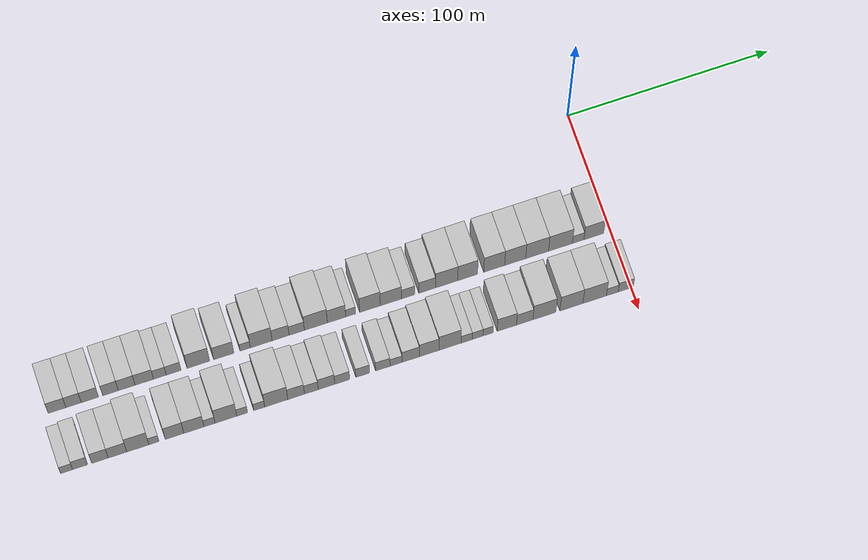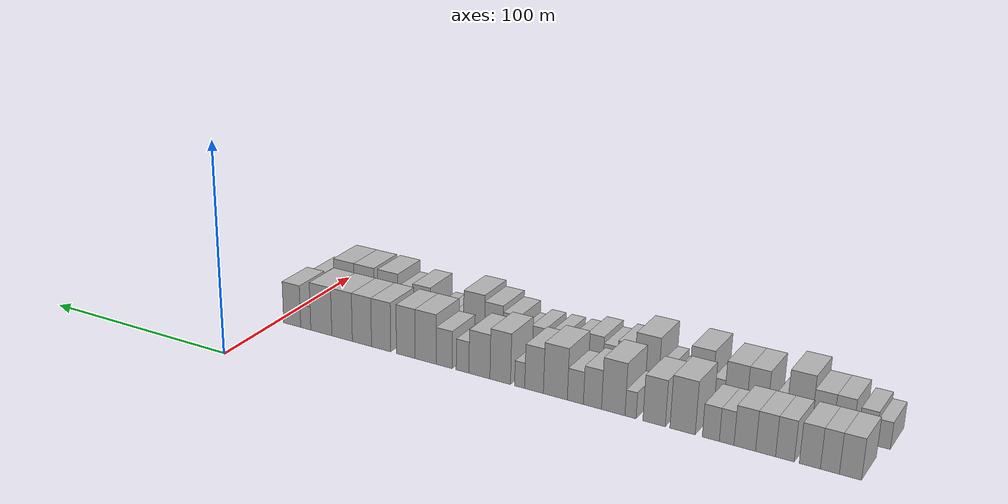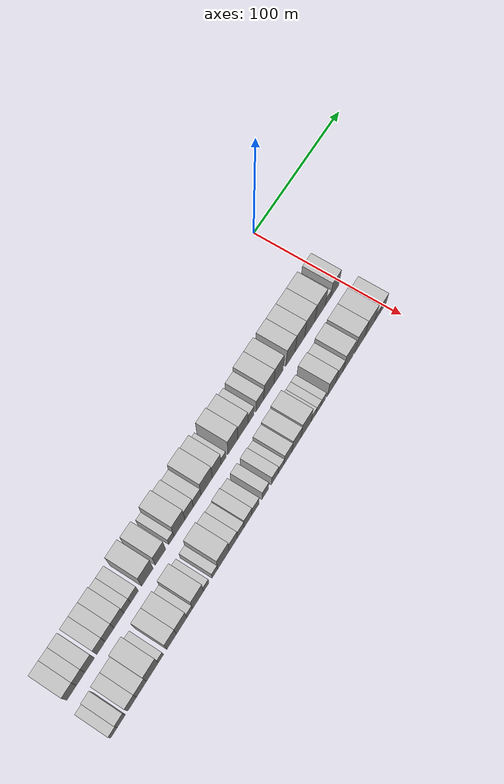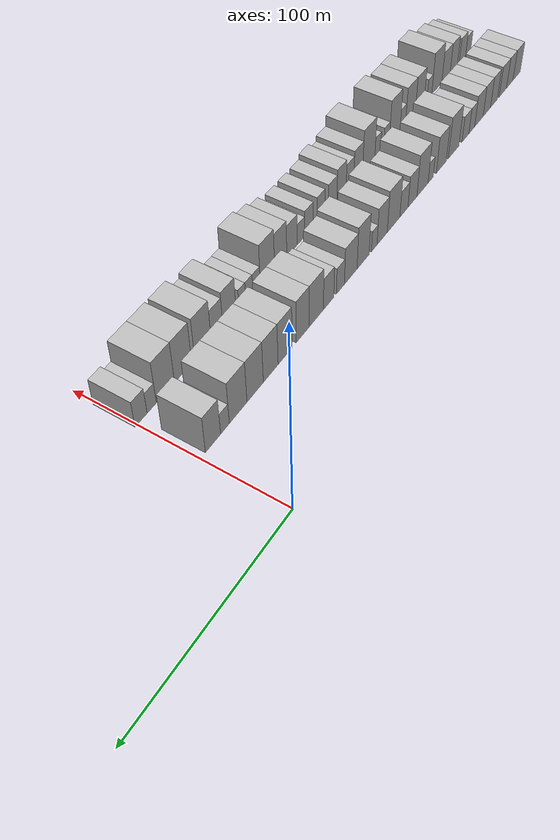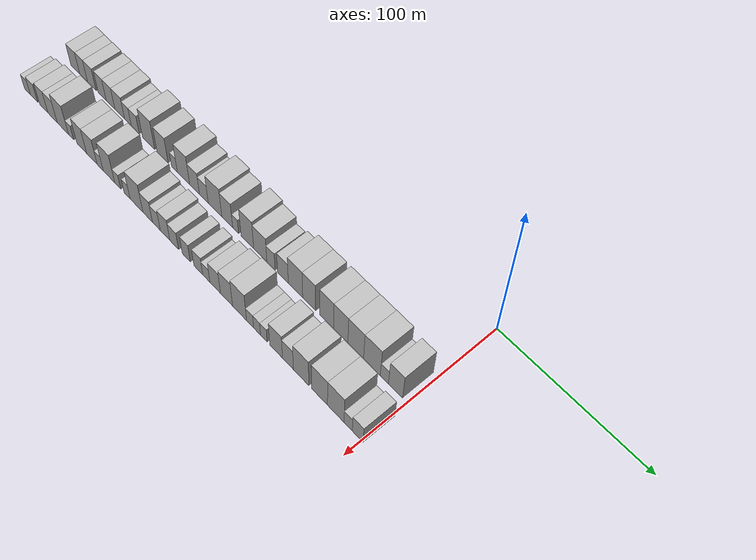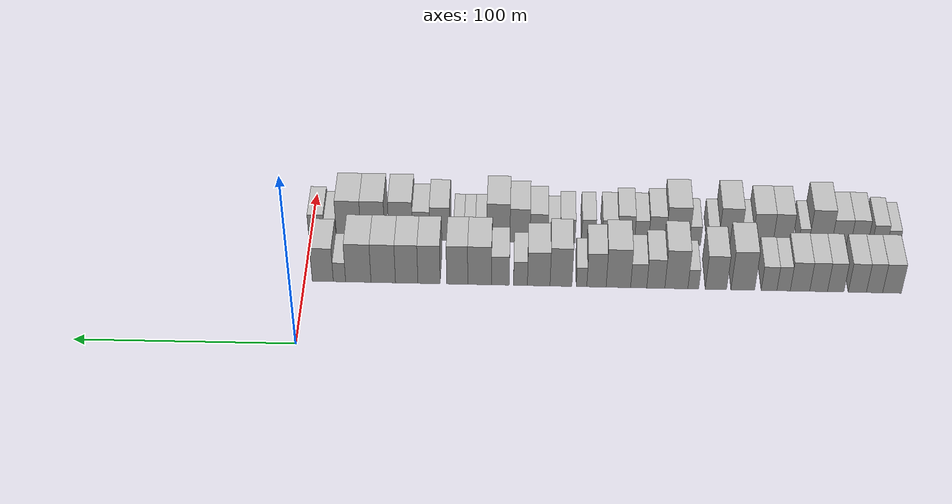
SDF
<sdf version="1.6">
 <world name="default">
  <model name="building_1">
   <static>1</static>
   <pose>50.0000 -270.7168 0 0.000000 0.000000 0.000000</pose>
   <link name="link">
    <pose>0 0 9.00 0 0 0</pose>
    <collision name="collision"><geometry><box><size>20.0000 8.5664 18.0000</size></box></geometry></collision>
    <visual name="visual">
     <cast_shadows>0</cast_shadows>
     <geometry><box><size>20.0000 8.5664 18.0000</size></box></geometry>
     <material>
      <script>
       <uri>model://HANNAS_wall/materials/scripts</uri>
       <uri>model://HANNAS_wall/materials/textures</uri>
       <name>vrc/HANNAS_wall</name>
      </script>
     </material>
    </visual>
   </link>
  </model>
  <model name="building_2">
   <static>1</static>
   <pose>50.0000 -262.7219 0 0.000000 0.000000 0.000000</pose>
   <link name="link">
    <pose>0 0 9.00 0 0 0</pose>
    <collision name="collision"><geometry><box><size>20.0000 7.4233 18.0000</size></box></geometry></collision>
    <visual name="visual">
     <cast_shadows>0</cast_shadows>
     <geometry><box><size>20.0000 7.4233 18.0000</size></box></geometry>
     <material>
      <script>
       <uri>model://HANNAS_wall/materials/scripts</uri>
       <uri>model://HANNAS_wall/materials/textures</uri>
       <name>vrc/HANNAS_wall</name>
      </script>
     </material>
    </visual>
   </link>
  </model>
  <model name="building_3">
   <static>1</static>
   <pose>50.0000 -254.8419 0 0.000000 0.000000 0.000000</pose>
   <link name="link">
    <pose>0 0 9.00 0 0 0</pose>
    <collision name="collision"><geometry><box><size>20.0000 8.3367 18.0000</size></box></geometry></collision>
    <visual name="visual">
     <cast_shadows>0</cast_shadows>
     <geometry><box><size>20.0000 8.3367 18.0000</size></box></geometry>
     <material>
      <script>
       <uri>model://HANNAS_wall/materials/scripts</uri>
       <uri>model://HANNAS_wall/materials/textures</uri>
       <name>vrc/HANNAS_wall</name>
      </script>
     </material>
    </visual>
   </link>
  </model>
  <model name="building_4">
   <static>1</static>
   <pose>50.0000 -244.9049 0 0.000000 0.000000 0.000000</pose>
   <link name="link">
    <pose>0 0 9.00 0 0 0</pose>
    <collision name="collision"><geometry><box><size>20.0000 7.5373 18.0000</size></box></geometry></collision>
    <visual name="visual">
     <cast_shadows>0</cast_shadows>
     <geometry><box><size>20.0000 7.5373 18.0000</size></box></geometry>
     <material>
      <script>
       <uri>model://HANNAS_wall/materials/scripts</uri>
       <uri>model://HANNAS_wall/materials/textures</uri>
       <name>vrc/HANNAS_wall</name>
      </script>
     </material>
    </visual>
   </link>
  </model>
  <model name="building_5">
   <static>1</static>
   <pose>50.0000 -237.0605 0 0.000000 0.000000 0.000000</pose>
   <link name="link">
    <pose>0 0 9.00 0 0 0</pose>
    <collision name="collision"><geometry><box><size>20.0000 8.1513 18.0000</size></box></geometry></collision>
    <visual name="visual">
     <cast_shadows>0</cast_shadows>
     <geometry><box><size>20.0000 8.1513 18.0000</size></box></geometry>
     <material>
      <script>
       <uri>model://HANNAS_wall/materials/scripts</uri>
       <uri>model://HANNAS_wall/materials/textures</uri>
       <name>vrc/HANNAS_wall</name>
      </script>
     </material>
    </visual>
   </link>
  </model>
  <model name="building_6">
   <static>1</static>
   <pose>50.0000 -228.5198 0 0.000000 0.000000 0.000000</pose>
   <link name="link">
    <pose>0 0 9.00 0 0 0</pose>
    <collision name="collision"><geometry><box><size>20.0000 8.9301 18.0000</size></box></geometry></collision>
    <visual name="visual">
     <cast_shadows>0</cast_shadows>
     <geometry><box><size>20.0000 8.9301 18.0000</size></box></geometry>
     <material>
      <script>
       <uri>model://HANNAS_wall/materials/scripts</uri>
       <uri>model://HANNAS_wall/materials/textures</uri>
       <name>vrc/HANNAS_wall</name>
      </script>
     </material>
    </visual>
   </link>
  </model>
  <model name="building_7">
   <static>1</static>
   <pose>50.0000 -220.9918 0 0.000000 0.000000 0.000000</pose>
   <link name="link">
    <pose>0 0 7.50 0 0 0</pose>
    <collision name="collision"><geometry><box><size>20.0000 6.1259 15.0000</size></box></geometry></collision>
    <visual name="visual">
     <cast_shadows>0</cast_shadows>
     <geometry><box><size>20.0000 6.1259 15.0000</size></box></geometry>
     <material>
      <script>
       <uri>model://HANNAS_wall/materials/scripts</uri>
       <uri>model://HANNAS_wall/materials/textures</uri>
       <name>vrc/HANNAS_wall</name>
      </script>
     </material>
    </visual>
   </link>
  </model>
  <model name="building_8">
   <static>1</static>
   <pose>50.0000 -214.3216 0 0.000000 0.000000 0.000000</pose>
   <link name="link">
    <pose>0 0 7.50 0 0 0</pose>
    <collision name="collision"><geometry><box><size>20.0000 7.2145 15.0000</size></box></geometry></collision>
    <visual name="visual">
     <cast_shadows>0</cast_shadows>
     <geometry><box><size>20.0000 7.2145 15.0000</size></box></geometry>
     <material>
      <script>
       <uri>model://HANNAS_wall/materials/scripts</uri>
       <uri>model://HANNAS_wall/materials/textures</uri>
       <name>vrc/HANNAS_wall</name>
      </script>
     </material>
    </visual>
   </link>
  </model>
  <model name="building_9">
   <static>1</static>
   <pose>50.0000 -202.2630 0 0.000000 0.000000 0.000000</pose>
   <link name="link">
    <pose>0 0 12.00 0 0 0</pose>
    <collision name="collision"><geometry><box><size>20.0000 10.9027 24.0000</size></box></geometry></collision>
    <visual name="visual">
     <cast_shadows>0</cast_shadows>
     <geometry><box><size>20.0000 10.9027 24.0000</size></box></geometry>
     <material>
      <script>
       <uri>model://HANNAS_wall/materials/scripts</uri>
       <uri>model://HANNAS_wall/materials/textures</uri>
       <name>vrc/HANNAS_wall</name>
      </script>
     </material>
    </visual>
   </link>
  </model>
  <model name="building_10">
   <static>1</static>
   <pose>50.0000 -189.8915 0 0.000000 0.000000 0.000000</pose>
   <link name="link">
    <pose>0 0 10.50 0 0 0</pose>
    <collision name="collision"><geometry><box><size>20.0000 9.8403 21.0000</size></box></geometry></collision>
    <visual name="visual">
     <cast_shadows>0</cast_shadows>
     <geometry><box><size>20.0000 9.8403 21.0000</size></box></geometry>
     <material>
      <script>
       <uri>model://HANNAS_wall/materials/scripts</uri>
       <uri>model://HANNAS_wall/materials/textures</uri>
       <name>vrc/HANNAS_wall</name>
      </script>
     </material>
    </visual>
   </link>
  </model>
  <model name="building_11">
   <static>1</static>
   <pose>50.0000 -179.4758 0 0.000000 0.000000 0.000000</pose>
   <link name="link">
    <pose>0 0 6.00 0 0 0</pose>
    <collision name="collision"><geometry><box><size>20.0000 4.9911 12.0000</size></box></geometry></collision>
    <visual name="visual">
     <cast_shadows>0</cast_shadows>
     <geometry><box><size>20.0000 4.9911 12.0000</size></box></geometry>
     <material>
      <script>
       <uri>model://HANNAS_wall/materials/scripts</uri>
       <uri>model://HANNAS_wall/materials/textures</uri>
       <name>vrc/HANNAS_wall</name>
      </script>
     </material>
    </visual>
   </link>
  </model>
  <model name="building_12">
   <static>1</static>
   <pose>50.0000 -171.6714 0 0.000000 0.000000 0.000000</pose>
   <link name="link">
    <pose>0 0 12.00 0 0 0</pose>
    <collision name="collision"><geometry><box><size>20.0000 10.6177 24.0000</size></box></geometry></collision>
    <visual name="visual">
     <cast_shadows>0</cast_shadows>
     <geometry><box><size>20.0000 10.6177 24.0000</size></box></geometry>
     <material>
      <script>
       <uri>model://HANNAS_wall/materials/scripts</uri>
       <uri>model://HANNAS_wall/materials/textures</uri>
       <name>vrc/HANNAS_wall</name>
      </script>
     </material>
    </visual>
   </link>
  </model>
  <model name="building_13">
   <static>1</static>
   <pose>50.0000 -162.2063 0 0.000000 0.000000 0.000000</pose>
   <link name="link">
    <pose>0 0 9.00 0 0 0</pose>
    <collision name="collision"><geometry><box><size>20.0000 8.3125 18.0000</size></box></geometry></collision>
    <visual name="visual">
     <cast_shadows>0</cast_shadows>
     <geometry><box><size>20.0000 8.3125 18.0000</size></box></geometry>
     <material>
      <script>
       <uri>model://HANNAS_wall/materials/scripts</uri>
       <uri>model://HANNAS_wall/materials/textures</uri>
       <name>vrc/HANNAS_wall</name>
      </script>
     </material>
    </visual>
   </link>
  </model>
  <model name="building_14">
   <static>1</static>
   <pose>50.0000 -154.3164 0 0.000000 0.000000 0.000000</pose>
   <link name="link">
    <pose>0 0 7.50 0 0 0</pose>
    <collision name="collision"><geometry><box><size>20.0000 7.4673 15.0000</size></box></geometry></collision>
    <visual name="visual">
     <cast_shadows>0</cast_shadows>
     <geometry><box><size>20.0000 7.4673 15.0000</size></box></geometry>
     <material>
      <script>
       <uri>model://HANNAS_wall/materials/scripts</uri>
       <uri>model://HANNAS_wall/materials/textures</uri>
       <name>vrc/HANNAS_wall</name>
      </script>
     </material>
    </visual>
   </link>
  </model>
  <model name="building_15">
   <static>1</static>
   <pose>50.0000 -144.9487 0 0.000000 0.000000 0.000000</pose>
   <link name="link">
    <pose>0 0 12.00 0 0 0</pose>
    <collision name="collision"><geometry><box><size>20.0000 11.2681 24.0000</size></box></geometry></collision>
    <visual name="visual">
     <cast_shadows>0</cast_shadows>
     <geometry><box><size>20.0000 11.2681 24.0000</size></box></geometry>
     <material>
      <script>
       <uri>model://HANNAS_wall/materials/scripts</uri>
       <uri>model://HANNAS_wall/materials/textures</uri>
       <name>vrc/HANNAS_wall</name>
      </script>
     </material>
    </visual>
   </link>
  </model>
  <model name="building_16">
   <static>1</static>
   <pose>50.0000 -134.8503 0 0.000000 0.000000 0.000000</pose>
   <link name="link">
    <pose>0 0 10.50 0 0 0</pose>
    <collision name="collision"><geometry><box><size>20.0000 8.9286 21.0000</size></box></geometry></collision>
    <visual name="visual">
     <cast_shadows>0</cast_shadows>
     <geometry><box><size>20.0000 8.9286 21.0000</size></box></geometry>
     <material>
      <script>
       <uri>model://HANNAS_wall/materials/scripts</uri>
       <uri>model://HANNAS_wall/materials/textures</uri>
       <name>vrc/HANNAS_wall</name>
      </script>
     </material>
    </visual>
   </link>
  </model>
  <model name="building_17">
   <static>1</static>
   <pose>50.0000 -127.9544 0 0.000000 0.000000 0.000000</pose>
   <link name="link">
    <pose>0 0 6.00 0 0 0</pose>
    <collision name="collision"><geometry><box><size>20.0000 4.8633 12.0000</size></box></geometry></collision>
    <visual name="visual">
     <cast_shadows>0</cast_shadows>
     <geometry><box><size>20.0000 4.8633 12.0000</size></box></geometry>
     <material>
      <script>
       <uri>model://HANNAS_wall/materials/scripts</uri>
       <uri>model://HANNAS_wall/materials/textures</uri>
       <name>vrc/HANNAS_wall</name>
      </script>
     </material>
    </visual>
   </link>
  </model>
  <model name="building_18">
   <static>1</static>
   <pose>50.0000 -118.4666 0 0.000000 0.000000 0.000000</pose>
   <link name="link">
    <pose>0 0 12.00 0 0 0</pose>
    <collision name="collision"><geometry><box><size>20.0000 10.1121 24.0000</size></box></geometry></collision>
    <visual name="visual">
     <cast_shadows>0</cast_shadows>
     <geometry><box><size>20.0000 10.1121 24.0000</size></box></geometry>
     <material>
      <script>
       <uri>model://HANNAS_wall/materials/scripts</uri>
       <uri>model://HANNAS_wall/materials/textures</uri>
       <name>vrc/HANNAS_wall</name>
      </script>
     </material>
    </visual>
   </link>
  </model>
  <model name="building_19">
   <static>1</static>
   <pose>50.0000 -108.1889 0 0.000000 0.000000 0.000000</pose>
   <link name="link">
    <pose>0 0 10.50 0 0 0</pose>
    <collision name="collision"><geometry><box><size>20.0000 10.4434 21.0000</size></box></geometry></collision>
    <visual name="visual">
     <cast_shadows>0</cast_shadows>
     <geometry><box><size>20.0000 10.4434 21.0000</size></box></geometry>
     <material>
      <script>
       <uri>model://HANNAS_wall/materials/scripts</uri>
       <uri>model://HANNAS_wall/materials/textures</uri>
       <name>vrc/HANNAS_wall</name>
      </script>
     </material>
    </visual>
   </link>
  </model>
  <model name="building_20">
   <static>1</static>
   <pose>50.0000 -99.7543 0 0.000000 0.000000 0.000000</pose>
   <link name="link">
    <pose>0 0 7.50 0 0 0</pose>
    <collision name="collision"><geometry><box><size>20.0000 6.4258 15.0000</size></box></geometry></collision>
    <visual name="visual">
     <cast_shadows>0</cast_shadows>
     <geometry><box><size>20.0000 6.4258 15.0000</size></box></geometry>
     <material>
      <script>
       <uri>model://HANNAS_wall/materials/scripts</uri>
       <uri>model://HANNAS_wall/materials/textures</uri>
       <name>vrc/HANNAS_wall</name>
      </script>
     </material>
    </visual>
   </link>
  </model>
  <model name="building_21">
   <static>1</static>
   <pose>50.0000 -90.4187 0 0.000000 0.000000 0.000000</pose>
   <link name="link">
    <pose>0 0 9.00 0 0 0</pose>
    <collision name="collision"><geometry><box><size>20.0000 8.2455 18.0000</size></box></geometry></collision>
    <visual name="visual">
     <cast_shadows>0</cast_shadows>
     <geometry><box><size>20.0000 8.2455 18.0000</size></box></geometry>
     <material>
      <script>
       <uri>model://HANNAS_wall/materials/scripts</uri>
       <uri>model://HANNAS_wall/materials/textures</uri>
       <name>vrc/HANNAS_wall</name>
      </script>
     </material>
    </visual>
   </link>
  </model>
  <model name="building_22">
   <static>1</static>
   <pose>50.0000 -80.8268 0 0.000000 0.000000 0.000000</pose>
   <link name="link">
    <pose>0 0 12.00 0 0 0</pose>
    <collision name="collision"><geometry><box><size>20.0000 10.9381 24.0000</size></box></geometry></collision>
    <visual name="visual">
     <cast_shadows>0</cast_shadows>
     <geometry><box><size>20.0000 10.9381 24.0000</size></box></geometry>
     <material>
      <script>
       <uri>model://HANNAS_wall/materials/scripts</uri>
       <uri>model://HANNAS_wall/materials/textures</uri>
       <name>vrc/HANNAS_wall</name>
      </script>
     </material>
    </visual>
   </link>
  </model>
  <model name="building_23">
   <static>1</static>
   <pose>50.0000 -70.4819 0 0.000000 0.000000 0.000000</pose>
   <link name="link">
    <pose>0 0 12.00 0 0 0</pose>
    <collision name="collision"><geometry><box><size>20.0000 9.7517 24.0000</size></box></geometry></collision>
    <visual name="visual">
     <cast_shadows>0</cast_shadows>
     <geometry><box><size>20.0000 9.7517 24.0000</size></box></geometry>
     <material>
      <script>
       <uri>model://HANNAS_wall/materials/scripts</uri>
       <uri>model://HANNAS_wall/materials/textures</uri>
       <name>vrc/HANNAS_wall</name>
      </script>
     </material>
    </visual>
   </link>
  </model>
  <model name="building_24">
   <static>1</static>
   <pose>50.0000 -57.4572 0 0.000000 0.000000 0.000000</pose>
   <link name="link">
    <pose>0 0 12.00 0 0 0</pose>
    <collision name="collision"><geometry><box><size>20.0000 10.2979 24.0000</size></box></geometry></collision>
    <visual name="visual">
     <cast_shadows>0</cast_shadows>
     <geometry><box><size>20.0000 10.2979 24.0000</size></box></geometry>
     <material>
      <script>
       <uri>model://HANNAS_wall/materials/scripts</uri>
       <uri>model://HANNAS_wall/materials/textures</uri>
       <name>vrc/HANNAS_wall</name>
      </script>
     </material>
    </visual>
   </link>
  </model>
  <model name="building_25">
   <static>1</static>
   <pose>50.0000 -47.1067 0 0.000000 0.000000 0.000000</pose>
   <link name="link">
    <pose>0 0 12.00 0 0 0</pose>
    <collision name="collision"><geometry><box><size>20.0000 10.4030 24.0000</size></box></geometry></collision>
    <visual name="visual">
     <cast_shadows>0</cast_shadows>
     <geometry><box><size>20.0000 10.4030 24.0000</size></box></geometry>
     <material>
      <script>
       <uri>model://HANNAS_wall/materials/scripts</uri>
       <uri>model://HANNAS_wall/materials/textures</uri>
       <name>vrc/HANNAS_wall</name>
      </script>
     </material>
    </visual>
   </link>
  </model>
  <model name="building_26">
   <static>1</static>
   <pose>50.0000 -36.2459 0 0.000000 0.000000 0.000000</pose>
   <link name="link">
    <pose>0 0 12.00 0 0 0</pose>
    <collision name="collision"><geometry><box><size>20.0000 11.3186 24.0000</size></box></geometry></collision>
    <visual name="visual">
     <cast_shadows>0</cast_shadows>
     <geometry><box><size>20.0000 11.3186 24.0000</size></box></geometry>
     <material>
      <script>
       <uri>model://HANNAS_wall/materials/scripts</uri>
       <uri>model://HANNAS_wall/materials/textures</uri>
       <name>vrc/HANNAS_wall</name>
      </script>
     </material>
    </visual>
   </link>
  </model>
  <model name="building_27">
   <static>1</static>
   <pose>50.0000 -24.6920 0 0.000000 0.000000 0.000000</pose>
   <link name="link">
    <pose>0 0 12.00 0 0 0</pose>
    <collision name="collision"><geometry><box><size>20.0000 11.7893 24.0000</size></box></geometry></collision>
    <visual name="visual">
     <cast_shadows>0</cast_shadows>
     <geometry><box><size>20.0000 11.7893 24.0000</size></box></geometry>
     <material>
      <script>
       <uri>model://HANNAS_wall/materials/scripts</uri>
       <uri>model://HANNAS_wall/materials/textures</uri>
       <name>vrc/HANNAS_wall</name>
      </script>
     </material>
    </visual>
   </link>
  </model>
  <model name="building_28">
   <static>1</static>
   <pose>50.0000 -15.9460 0 0.000000 0.000000 0.000000</pose>
   <link name="link">
    <pose>0 0 6.00 0 0 0</pose>
    <collision name="collision"><geometry><box><size>20.0000 5.7028 12.0000</size></box></geometry></collision>
    <visual name="visual">
     <cast_shadows>0</cast_shadows>
     <geometry><box><size>20.0000 5.7028 12.0000</size></box></geometry>
     <material>
      <script>
       <uri>model://HANNAS_wall/materials/scripts</uri>
       <uri>model://HANNAS_wall/materials/textures</uri>
       <name>vrc/HANNAS_wall</name>
      </script>
     </material>
    </visual>
   </link>
  </model>
  <model name="building_29">
   <static>1</static>
   <pose>50.0000 -8.2112 0 0.000000 0.000000 0.000000</pose>
   <link name="link">
    <pose>0 0 10.50 0 0 0</pose>
    <collision name="collision"><geometry><box><size>20.0000 9.7667 21.0000</size></box></geometry></collision>
    <visual name="visual">
     <cast_shadows>0</cast_shadows>
     <geometry><box><size>20.0000 9.7667 21.0000</size></box></geometry>
     <material>
      <script>
       <uri>model://HANNAS_wall/materials/scripts</uri>
       <uri>model://HANNAS_wall/materials/textures</uri>
       <name>vrc/HANNAS_wall</name>
      </script>
     </material>
    </visual>
   </link>
  </model>
  <model name="building_61">
   <static>1</static>
   <pose>79.0000 -275.0721 0 0.000000 0.000000 0.000000</pose>
   <link name="link">
    <pose>0 0 6.00 0 0 0</pose>
    <collision name="collision"><geometry><box><size>20.0000 5.8558 12.0000</size></box></geometry></collision>
    <visual name="visual">
     <cast_shadows>0</cast_shadows>
     <geometry><box><size>20.0000 5.8558 12.0000</size></box></geometry>
     <material>
      <script>
       <uri>model://HANNAS_wall/materials/scripts</uri>
       <uri>model://HANNAS_wall/materials/textures</uri>
       <name>vrc/HANNAS_wall</name>
      </script>
     </material>
    </visual>
   </link>
  </model>
  <model name="building_62">
   <static>1</static>
   <pose>79.0000 -268.5609 0 0.000000 0.000000 0.000000</pose>
   <link name="link">
    <pose>0 0 7.50 0 0 0</pose>
    <collision name="collision"><geometry><box><size>20.0000 7.1666 15.0000</size></box></geometry></collision>
    <visual name="visual">
     <cast_shadows>0</cast_shadows>
     <geometry><box><size>20.0000 7.1666 15.0000</size></box></geometry>
     <material>
      <script>
       <uri>model://HANNAS_wall/materials/scripts</uri>
       <uri>model://HANNAS_wall/materials/textures</uri>
       <name>vrc/HANNAS_wall</name>
      </script>
     </material>
    </visual>
   </link>
  </model>
  <model name="building_63">
   <static>1</static>
   <pose>79.0000 -258.9908 0 0.000000 0.000000 0.000000</pose>
   <link name="link">
    <pose>0 0 9.00 0 0 0</pose>
    <collision name="collision"><geometry><box><size>20.0000 7.9735 18.0000</size></box></geometry></collision>
    <visual name="visual">
     <cast_shadows>0</cast_shadows>
     <geometry><box><size>20.0000 7.9735 18.0000</size></box></geometry>
     <material>
      <script>
       <uri>model://HANNAS_wall/materials/scripts</uri>
       <uri>model://HANNAS_wall/materials/textures</uri>
       <name>vrc/HANNAS_wall</name>
      </script>
     </material>
    </visual>
   </link>
  </model>
  <model name="building_64">
   <static>1</static>
   <pose>79.0000 -250.5445 0 0.000000 0.000000 0.000000</pose>
   <link name="link">
    <pose>0 0 9.00 0 0 0</pose>
    <collision name="collision"><geometry><box><size>20.0000 8.9191 18.0000</size></box></geometry></collision>
    <visual name="visual">
     <cast_shadows>0</cast_shadows>
     <geometry><box><size>20.0000 8.9191 18.0000</size></box></geometry>
     <material>
      <script>
       <uri>model://HANNAS_wall/materials/scripts</uri>
       <uri>model://HANNAS_wall/materials/textures</uri>
       <name>vrc/HANNAS_wall</name>
      </script>
     </material>
    </visual>
   </link>
  </model>
  <model name="building_65">
   <static>1</static>
   <pose>79.0000 -240.7412 0 0.000000 0.000000 0.000000</pose>
   <link name="link">
    <pose>0 0 12.00 0 0 0</pose>
    <collision name="collision"><geometry><box><size>20.0000 10.6875 24.0000</size></box></geometry></collision>
    <visual name="visual">
     <cast_shadows>0</cast_shadows>
     <geometry><box><size>20.0000 10.6875 24.0000</size></box></geometry>
     <material>
      <script>
       <uri>model://HANNAS_wall/materials/scripts</uri>
       <uri>model://HANNAS_wall/materials/textures</uri>
       <name>vrc/HANNAS_wall</name>
      </script>
     </material>
    </visual>
   </link>
  </model>
  <model name="building_66">
   <static>1</static>
   <pose>79.0000 -232.9635 0 0.000000 0.000000 0.000000</pose>
   <link name="link">
    <pose>0 0 6.00 0 0 0</pose>
    <collision name="collision"><geometry><box><size>20.0000 4.8679 12.0000</size></box></geometry></collision>
    <visual name="visual">
     <cast_shadows>0</cast_shadows>
     <geometry><box><size>20.0000 4.8679 12.0000</size></box></geometry>
     <material>
      <script>
       <uri>model://HANNAS_wall/materials/scripts</uri>
       <uri>model://HANNAS_wall/materials/textures</uri>
       <name>vrc/HANNAS_wall</name>
      </script>
     </material>
    </visual>
   </link>
  </model>
  <model name="building_67">
   <static>1</static>
   <pose>79.0000 -223.0321 0 0.000000 0.000000 0.000000</pose>
   <link name="link">
    <pose>0 0 10.50 0 0 0</pose>
    <collision name="collision"><geometry><box><size>20.0000 8.9949 21.0000</size></box></geometry></collision>
    <visual name="visual">
     <cast_shadows>0</cast_shadows>
     <geometry><box><size>20.0000 8.9949 21.0000</size></box></geometry>
     <material>
      <script>
       <uri>model://HANNAS_wall/materials/scripts</uri>
       <uri>model://HANNAS_wall/materials/textures</uri>
       <name>vrc/HANNAS_wall</name>
      </script>
     </material>
    </visual>
   </link>
  </model>
  <model name="building_68">
   <static>1</static>
   <pose>79.0000 -213.6621 0 0.000000 0.000000 0.000000</pose>
   <link name="link">
    <pose>0 0 10.50 0 0 0</pose>
    <collision name="collision"><geometry><box><size>20.0000 9.7450 21.0000</size></box></geometry></collision>
    <visual name="visual">
     <cast_shadows>0</cast_shadows>
     <geometry><box><size>20.0000 9.7450 21.0000</size></box></geometry>
     <material>
      <script>
       <uri>model://HANNAS_wall/materials/scripts</uri>
       <uri>model://HANNAS_wall/materials/textures</uri>
       <name>vrc/HANNAS_wall</name>
      </script>
     </material>
    </visual>
   </link>
  </model>
  <model name="building_69">
   <static>1</static>
   <pose>79.0000 -206.0963 0 0.000000 0.000000 0.000000</pose>
   <link name="link">
    <pose>0 0 6.00 0 0 0</pose>
    <collision name="collision"><geometry><box><size>20.0000 5.3866 12.0000</size></box></geometry></collision>
    <visual name="visual">
     <cast_shadows>0</cast_shadows>
     <geometry><box><size>20.0000 5.3866 12.0000</size></box></geometry>
     <material>
      <script>
       <uri>model://HANNAS_wall/materials/scripts</uri>
       <uri>model://HANNAS_wall/materials/textures</uri>
       <name>vrc/HANNAS_wall</name>
      </script>
     </material>
    </visual>
   </link>
  </model>
  <model name="building_70">
   <static>1</static>
   <pose>79.0000 -198.1721 0 0.000000 0.000000 0.000000</pose>
   <link name="link">
    <pose>0 0 12.00 0 0 0</pose>
    <collision name="collision"><geometry><box><size>20.0000 10.4617 24.0000</size></box></geometry></collision>
    <visual name="visual">
     <cast_shadows>0</cast_shadows>
     <geometry><box><size>20.0000 10.4617 24.0000</size></box></geometry>
     <material>
      <script>
       <uri>model://HANNAS_wall/materials/scripts</uri>
       <uri>model://HANNAS_wall/materials/textures</uri>
       <name>vrc/HANNAS_wall</name>
      </script>
     </material>
    </visual>
   </link>
  </model>
  <model name="building_71">
   <static>1</static>
   <pose>79.0000 -190.3013 0 0.000000 0.000000 0.000000</pose>
   <link name="link">
    <pose>0 0 6.00 0 0 0</pose>
    <collision name="collision"><geometry><box><size>20.0000 5.2799 12.0000</size></box></geometry></collision>
    <visual name="visual">
     <cast_shadows>0</cast_shadows>
     <geometry><box><size>20.0000 5.2799 12.0000</size></box></geometry>
     <material>
      <script>
       <uri>model://HANNAS_wall/materials/scripts</uri>
       <uri>model://HANNAS_wall/materials/textures</uri>
       <name>vrc/HANNAS_wall</name>
      </script>
     </material>
    </visual>
   </link>
  </model>
  <model name="building_72">
   <static>1</static>
   <pose>79.0000 -181.9989 0 0.000000 0.000000 0.000000</pose>
   <link name="link">
    <pose>0 0 6.00 0 0 0</pose>
    <collision name="collision"><geometry><box><size>20.0000 5.3250 12.0000</size></box></geometry></collision>
    <visual name="visual">
     <cast_shadows>0</cast_shadows>
     <geometry><box><size>20.0000 5.3250 12.0000</size></box></geometry>
     <material>
      <script>
       <uri>model://HANNAS_wall/materials/scripts</uri>
       <uri>model://HANNAS_wall/materials/textures</uri>
       <name>vrc/HANNAS_wall</name>
      </script>
     </material>
    </visual>
   </link>
  </model>
  <model name="building_73">
   <static>1</static>
   <pose>79.0000 -173.7355 0 0.000000 0.000000 0.000000</pose>
   <link name="link">
    <pose>0 0 12.00 0 0 0</pose>
    <collision name="collision"><geometry><box><size>20.0000 11.2016 24.0000</size></box></geometry></collision>
    <visual name="visual">
     <cast_shadows>0</cast_shadows>
     <geometry><box><size>20.0000 11.2016 24.0000</size></box></geometry>
     <material>
      <script>
       <uri>model://HANNAS_wall/materials/scripts</uri>
       <uri>model://HANNAS_wall/materials/textures</uri>
       <name>vrc/HANNAS_wall</name>
      </script>
     </material>
    </visual>
   </link>
  </model>
  <model name="building_74">
   <static>1</static>
   <pose>79.0000 -164.0741 0 0.000000 0.000000 0.000000</pose>
   <link name="link">
    <pose>0 0 9.00 0 0 0</pose>
    <collision name="collision"><geometry><box><size>20.0000 8.1213 18.0000</size></box></geometry></collision>
    <visual name="visual">
     <cast_shadows>0</cast_shadows>
     <geometry><box><size>20.0000 8.1213 18.0000</size></box></geometry>
     <material>
      <script>
       <uri>model://HANNAS_wall/materials/scripts</uri>
       <uri>model://HANNAS_wall/materials/textures</uri>
       <name>vrc/HANNAS_wall</name>
      </script>
     </material>
    </visual>
   </link>
  </model>
  <model name="building_75">
   <static>1</static>
   <pose>79.0000 -156.6602 0 0.000000 0.000000 0.000000</pose>
   <link name="link">
    <pose>0 0 7.50 0 0 0</pose>
    <collision name="collision"><geometry><box><size>20.0000 6.7065 15.0000</size></box></geometry></collision>
    <visual name="visual">
     <cast_shadows>0</cast_shadows>
     <geometry><box><size>20.0000 6.7065 15.0000</size></box></geometry>
     <material>
      <script>
       <uri>model://HANNAS_wall/materials/scripts</uri>
       <uri>model://HANNAS_wall/materials/textures</uri>
       <name>vrc/HANNAS_wall</name>
      </script>
     </material>
    </visual>
   </link>
  </model>
  <model name="building_76">
   <static>1</static>
   <pose>79.0000 -149.3009 0 0.000000 0.000000 0.000000</pose>
   <link name="link">
    <pose>0 0 9.00 0 0 0</pose>
    <collision name="collision"><geometry><box><size>20.0000 8.0122 18.0000</size></box></geometry></collision>
    <visual name="visual">
     <cast_shadows>0</cast_shadows>
     <geometry><box><size>20.0000 8.0122 18.0000</size></box></geometry>
     <material>
      <script>
       <uri>model://HANNAS_wall/materials/scripts</uri>
       <uri>model://HANNAS_wall/materials/textures</uri>
       <name>vrc/HANNAS_wall</name>
      </script>
     </material>
    </visual>
   </link>
  </model>
  <model name="building_77">
   <static>1</static>
   <pose>79.0000 -141.6397 0 0.000000 0.000000 0.000000</pose>
   <link name="link">
    <pose>0 0 7.50 0 0 0</pose>
    <collision name="collision"><geometry><box><size>20.0000 7.3103 15.0000</size></box></geometry></collision>
    <visual name="visual">
     <cast_shadows>0</cast_shadows>
     <geometry><box><size>20.0000 7.3103 15.0000</size></box></geometry>
     <material>
      <script>
       <uri>model://HANNAS_wall/materials/scripts</uri>
       <uri>model://HANNAS_wall/materials/textures</uri>
       <name>vrc/HANNAS_wall</name>
      </script>
     </material>
    </visual>
   </link>
  </model>
  <model name="building_78">
   <static>1</static>
   <pose>79.0000 -131.6481 0 0.000000 0.000000 0.000000</pose>
   <link name="link">
    <pose>0 0 7.50 0 0 0</pose>
    <collision name="collision"><geometry><box><size>20.0000 6.6727 15.0000</size></box></geometry></collision>
    <visual name="visual">
     <cast_shadows>0</cast_shadows>
     <geometry><box><size>20.0000 6.6727 15.0000</size></box></geometry>
     <material>
      <script>
       <uri>model://HANNAS_wall/materials/scripts</uri>
       <uri>model://HANNAS_wall/materials/textures</uri>
       <name>vrc/HANNAS_wall</name>
      </script>
     </material>
    </visual>
   </link>
  </model>
  <model name="building_79">
   <static>1</static>
   <pose>79.0000 -121.7756 0 0.000000 0.000000 0.000000</pose>
   <link name="link">
    <pose>0 0 7.50 0 0 0</pose>
    <collision name="collision"><geometry><box><size>20.0000 7.0724 15.0000</size></box></geometry></collision>
    <visual name="visual">
     <cast_shadows>0</cast_shadows>
     <geometry><box><size>20.0000 7.0724 15.0000</size></box></geometry>
     <material>
      <script>
       <uri>model://HANNAS_wall/materials/scripts</uri>
       <uri>model://HANNAS_wall/materials/textures</uri>
       <name>vrc/HANNAS_wall</name>
      </script>
     </material>
    </visual>
   </link>
  </model>
  <model name="building_80">
   <static>1</static>
   <pose>79.0000 -115.2958 0 0.000000 0.000000 0.000000</pose>
   <link name="link">
    <pose>0 0 6.00 0 0 0</pose>
    <collision name="collision"><geometry><box><size>20.0000 5.8871 12.0000</size></box></geometry></collision>
    <visual name="visual">
     <cast_shadows>0</cast_shadows>
     <geometry><box><size>20.0000 5.8871 12.0000</size></box></geometry>
     <material>
      <script>
       <uri>model://HANNAS_wall/materials/scripts</uri>
       <uri>model://HANNAS_wall/materials/textures</uri>
       <name>vrc/HANNAS_wall</name>
      </script>
     </material>
    </visual>
   </link>
  </model>
  <model name="building_81">
   <static>1</static>
   <pose>79.0000 -108.1417 0 0.000000 0.000000 0.000000</pose>
   <link name="link">
    <pose>0 0 9.00 0 0 0</pose>
    <collision name="collision"><geometry><box><size>20.0000 8.4211 18.0000</size></box></geometry></collision>
    <visual name="visual">
     <cast_shadows>0</cast_shadows>
     <geometry><box><size>20.0000 8.4211 18.0000</size></box></geometry>
     <material>
      <script>
       <uri>model://HANNAS_wall/materials/scripts</uri>
       <uri>model://HANNAS_wall/materials/textures</uri>
       <name>vrc/HANNAS_wall</name>
      </script>
     </material>
    </visual>
   </link>
  </model>
  <model name="building_82">
   <static>1</static>
   <pose>79.0000 -99.1760 0 0.000000 0.000000 0.000000</pose>
   <link name="link">
    <pose>0 0 10.50 0 0 0</pose>
    <collision name="collision"><geometry><box><size>20.0000 9.5102 21.0000</size></box></geometry></collision>
    <visual name="visual">
     <cast_shadows>0</cast_shadows>
     <geometry><box><size>20.0000 9.5102 21.0000</size></box></geometry>
     <material>
      <script>
       <uri>model://HANNAS_wall/materials/scripts</uri>
       <uri>model://HANNAS_wall/materials/textures</uri>
       <name>vrc/HANNAS_wall</name>
      </script>
     </material>
    </visual>
   </link>
  </model>
  <model name="building_83">
   <static>1</static>
   <pose>79.0000 -88.9799 0 0.000000 0.000000 0.000000</pose>
   <link name="link">
    <pose>0 0 12.00 0 0 0</pose>
    <collision name="collision"><geometry><box><size>20.0000 10.8820 24.0000</size></box></geometry></collision>
    <visual name="visual">
     <cast_shadows>0</cast_shadows>
     <geometry><box><size>20.0000 10.8820 24.0000</size></box></geometry>
     <material>
      <script>
       <uri>model://HANNAS_wall/materials/scripts</uri>
       <uri>model://HANNAS_wall/materials/textures</uri>
       <name>vrc/HANNAS_wall</name>
      </script>
     </material>
    </visual>
   </link>
  </model>
  <model name="building_84">
   <static>1</static>
   <pose>79.0000 -80.8079 0 0.000000 0.000000 0.000000</pose>
   <link name="link">
    <pose>0 0 6.00 0 0 0</pose>
    <collision name="collision"><geometry><box><size>20.0000 5.4620 12.0000</size></box></geometry></collision>
    <visual name="visual">
     <cast_shadows>0</cast_shadows>
     <geometry><box><size>20.0000 5.4620 12.0000</size></box></geometry>
     <material>
      <script>
       <uri>model://HANNAS_wall/materials/scripts</uri>
       <uri>model://HANNAS_wall/materials/textures</uri>
       <name>vrc/HANNAS_wall</name>
      </script>
     </material>
    </visual>
   </link>
  </model>
  <model name="building_85">
   <static>1</static>
   <pose>79.0000 -75.4604 0 0.000000 0.000000 0.000000</pose>
   <link name="link">
    <pose>0 0 6.00 0 0 0</pose>
    <collision name="collision"><geometry><box><size>20.0000 5.2329 12.0000</size></box></geometry></collision>
    <visual name="visual">
     <cast_shadows>0</cast_shadows>
     <geometry><box><size>20.0000 5.2329 12.0000</size></box></geometry>
     <material>
      <script>
       <uri>model://HANNAS_wall/materials/scripts</uri>
       <uri>model://HANNAS_wall/materials/textures</uri>
       <name>vrc/HANNAS_wall</name>
      </script>
     </material>
    </visual>
   </link>
  </model>
  <model name="building_86">
   <static>1</static>
   <pose>79.0000 -70.3423 0 0.000000 0.000000 0.000000</pose>
   <link name="link">
    <pose>0 0 6.00 0 0 0</pose>
    <collision name="collision"><geometry><box><size>20.0000 5.0033 12.0000</size></box></geometry></collision>
    <visual name="visual">
     <cast_shadows>0</cast_shadows>
     <geometry><box><size>20.0000 5.0033 12.0000</size></box></geometry>
     <material>
      <script>
       <uri>model://HANNAS_wall/materials/scripts</uri>
       <uri>model://HANNAS_wall/materials/textures</uri>
       <name>vrc/HANNAS_wall</name>
      </script>
     </material>
    </visual>
   </link>
  </model>
  <model name="building_87">
   <static>1</static>
   <pose>79.0000 -61.1200 0 0.000000 0.000000 0.000000</pose>
   <link name="link">
    <pose>0 0 10.50 0 0 0</pose>
    <collision name="collision"><geometry><box><size>20.0000 9.4412 21.0000</size></box></geometry></collision>
    <visual name="visual">
     <cast_shadows>0</cast_shadows>
     <geometry><box><size>20.0000 9.4412 21.0000</size></box></geometry>
     <material>
      <script>
       <uri>model://HANNAS_wall/materials/scripts</uri>
       <uri>model://HANNAS_wall/materials/textures</uri>
       <name>vrc/HANNAS_wall</name>
      </script>
     </material>
    </visual>
   </link>
  </model>
  <model name="building_88">
   <static>1</static>
   <pose>79.0000 -52.3464 0 0.000000 0.000000 0.000000</pose>
   <link name="link">
    <pose>0 0 9.00 0 0 0</pose>
    <collision name="collision"><geometry><box><size>20.0000 8.1061 18.0000</size></box></geometry></collision>
    <visual name="visual">
     <cast_shadows>0</cast_shadows>
     <geometry><box><size>20.0000 8.1061 18.0000</size></box></geometry>
     <material>
      <script>
       <uri>model://HANNAS_wall/materials/scripts</uri>
       <uri>model://HANNAS_wall/materials/textures</uri>
       <name>vrc/HANNAS_wall</name>
      </script>
     </material>
    </visual>
   </link>
  </model>
  <model name="building_89">
   <static>1</static>
   <pose>79.0000 -42.6872 0 0.000000 0.000000 0.000000</pose>
   <link name="link">
    <pose>0 0 12.00 0 0 0</pose>
    <collision name="collision"><geometry><box><size>20.0000 11.2122 24.0000</size></box></geometry></collision>
    <visual name="visual">
     <cast_shadows>0</cast_shadows>
     <geometry><box><size>20.0000 11.2122 24.0000</size></box></geometry>
     <material>
      <script>
       <uri>model://HANNAS_wall/materials/scripts</uri>
       <uri>model://HANNAS_wall/materials/textures</uri>
       <name>vrc/HANNAS_wall</name>
      </script>
     </material>
    </visual>
   </link>
  </model>
  <model name="building_90">
   <static>1</static>
   <pose>79.0000 -29.4083 0 0.000000 0.000000 0.000000</pose>
   <link name="link">
    <pose>0 0 12.00 0 0 0</pose>
    <collision name="collision"><geometry><box><size>20.0000 11.3457 24.0000</size></box></geometry></collision>
    <visual name="visual">
     <cast_shadows>0</cast_shadows>
     <geometry><box><size>20.0000 11.3457 24.0000</size></box></geometry>
     <material>
      <script>
       <uri>model://HANNAS_wall/materials/scripts</uri>
       <uri>model://HANNAS_wall/materials/textures</uri>
       <name>vrc/HANNAS_wall</name>
      </script>
     </material>
    </visual>
   </link>
  </model>
  <model name="building_91">
   <static>1</static>
   <pose>79.0000 -17.9327 0 0.000000 0.000000 0.000000</pose>
   <link name="link">
    <pose>0 0 12.00 0 0 0</pose>
    <collision name="collision"><geometry><box><size>20.0000 11.6056 24.0000</size></box></geometry></collision>
    <visual name="visual">
     <cast_shadows>0</cast_shadows>
     <geometry><box><size>20.0000 11.6056 24.0000</size></box></geometry>
     <material>
      <script>
       <uri>model://HANNAS_wall/materials/scripts</uri>
       <uri>model://HANNAS_wall/materials/textures</uri>
       <name>vrc/HANNAS_wall</name>
      </script>
     </material>
    </visual>
   </link>
  </model>
  <model name="building_92">
   <static>1</static>
   <pose>79.0000 -9.2452 0 0.000000 0.000000 0.000000</pose>
   <link name="link">
    <pose>0 0 6.00 0 0 0</pose>
    <collision name="collision"><geometry><box><size>20.0000 5.7694 12.0000</size></box></geometry></collision>
    <visual name="visual">
     <cast_shadows>0</cast_shadows>
     <geometry><box><size>20.0000 5.7694 12.0000</size></box></geometry>
     <material>
      <script>
       <uri>model://HANNAS_wall/materials/scripts</uri>
       <uri>model://HANNAS_wall/materials/textures</uri>
       <name>vrc/HANNAS_wall</name>
      </script>
     </material>
    </visual>
   </link>
  </model>
  <model name="building_93">
   <static>1</static>
   <pose>79.0000 -2.6193 0 0.000000 0.000000 0.000000</pose>
   <link name="link">
    <pose>0 0 7.50 0 0 0</pose>
    <collision name="collision"><geometry><box><size>20.0000 7.4824 15.0000</size></box></geometry></collision>
    <visual name="visual">
     <cast_shadows>0</cast_shadows>
     <geometry><box><size>20.0000 7.4824 15.0000</size></box></geometry>
     <material>
      <script>
       <uri>model://HANNAS_wall/materials/scripts</uri>
       <uri>model://HANNAS_wall/materials/textures</uri>
       <name>vrc/HANNAS_wall</name>
      </script>
     </material>
    </visual>
   </link>
  </model>
 </world>
</sdf>
